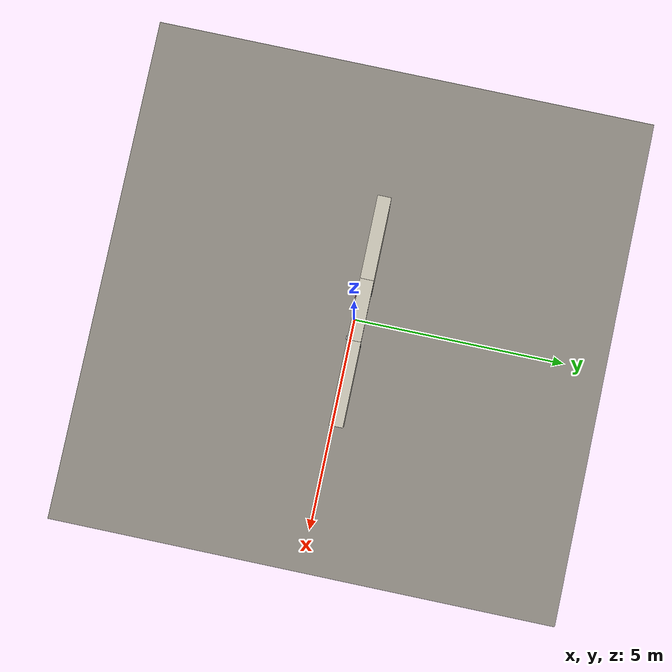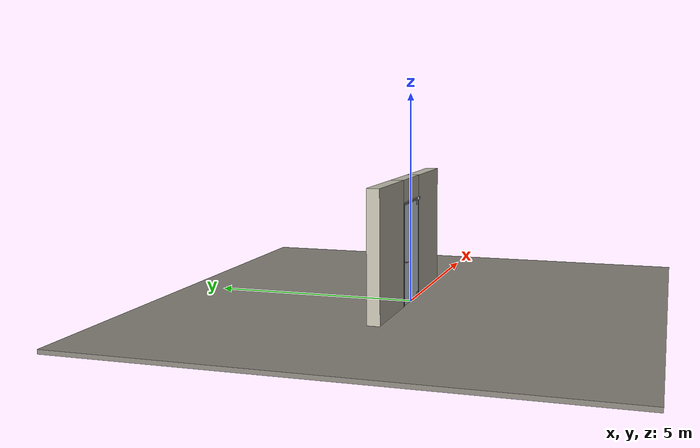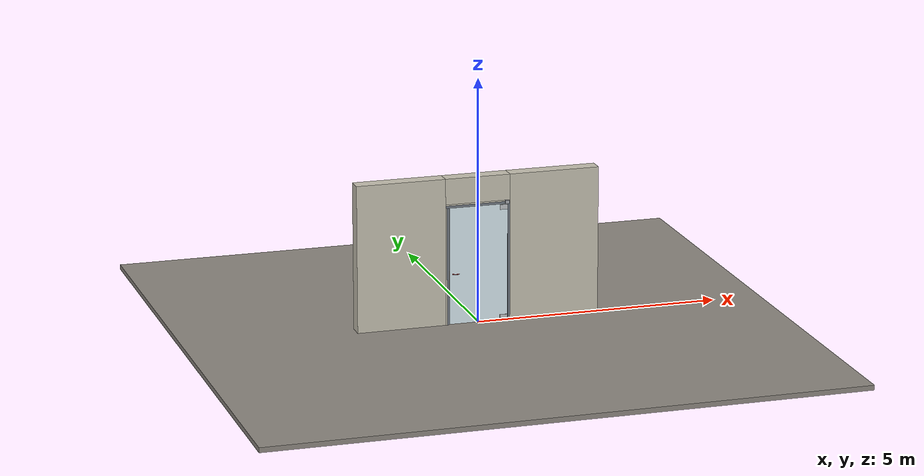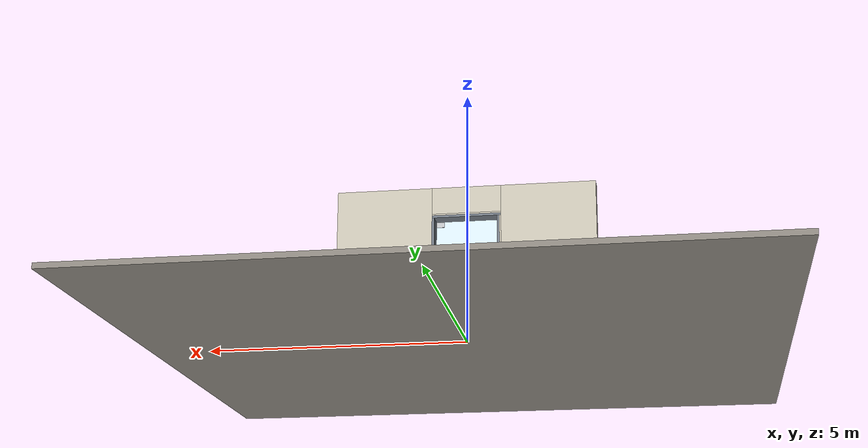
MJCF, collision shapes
<?xml version="1.0" ?>
<mujoco model="db0044_pivot_simple">
  <compiler angle="radian" meshdir="../../hardware" texturedir="../../textures" autolimits="true" inertiafromgeom="false"/>
  <option timestep="0.002" integrator="implicitfast" cone="elliptic" impratio="10" noslip_iterations="3">
    <flag multiccd="enable"/>
  </option>
  <size memory="16M"/>
  <default>
    <geom condim="4" solref="0.005 1" solimp="0.95 0.99 0.001"/>
    <joint solreflimit="0.005 1" solimplimit="0.95 0.99 0.001"/>
    <tendon solreflimit="0.005 1"/>
    <equality solref="0.002 1"/>
  </default>
  <visual>
    <headlight ambient="0.4 0.4 0.4" diffuse="0.7 0.7 0.7" specular="0.2 0.2 0.2"/>
    <quality shadowsize="4096"/>
    <map znear="0.01" zfar="60"/>
  </visual>
  <asset>
    <mesh name="lever_57205841c3" file="lever_57205841c3.obj"/>
    <material name="mat_floor" rgba="0.55 0.53 0.5 1" specular="0.2" shininess="0.15" reflectance="0"/>
    <material name="mat_wall" rgba="0.78 0.76 0.7 1" specular="0.2" shininess="0.1" reflectance="0"/>
    <material name="mat_leaf" rgba="0.85 0.92 0.95 0.25" specular="0.2" shininess="0.95" reflectance="0.1"/>
    <material name="mat_glass_leaf" rgba="0.85 0.92 0.95 0.25" specular="0.2" shininess="0.95" reflectance="0.1"/>
    <material name="mat_patch" rgba="0.75 0.76 0.77 1" specular="0.8" shininess="0.65" reflectance="0.4"/>
    <material name="mat_hinge" rgba="0.65 0.66 0.68 1" specular="0.74" shininess="0.5" reflectance="0.36"/>
    <material name="mat_op_black_matte_metal" rgba="0.05 0.05 0.05 1" specular="0.38" shininess="0.3" reflectance="0.12"/>
    <material name="mat_trim" rgba="0.85 0.66 0.3 1" specular="0.8" shininess="0.75" reflectance="0.4"/>
    <material name="mat_frame" rgba="0.45 0.48 0.52 1" specular="0.32" shininess="0.6" reflectance="0.08"/>
    <texture name="skybox" type="skybox" builtin="gradient" rgb1="0.6 0.7 0.85" rgb2="0.9 0.92 0.95" width="256" height="256"/>
  </asset>
  <worldbody>
    <light name="sun" pos="1.5 -2.5 4" dir="-0.3 0.5 -0.8" directional="true" diffuse="0.8 0.8 0.8" specular="0.3 0.3 0.3" castshadow="true"/>
    <light name="fill" pos="-1.5 2.5 3" dir="0.3 -0.5 -0.7" directional="true" diffuse="0.35 0.35 0.4" castshadow="false"/>
    <camera name="robot_view" pos="0 -2.75275 2.01415" xyaxes="1 0 0 0 0.26963 0.962964" fovy="52"/>
    <camera name="far_view" pos="0 3.01975 2.01415" xyaxes="-1 0 0 0 -0.26963 0.962964" fovy="52"/>
    <camera name="iso" pos="-2.19355 -2.29095 2.47595" xyaxes="0.741536 -0.670913 0 0.242917 0.268487 0.932151" fovy="46"/>
    <camera name="detail_handle" pos="-0.256 -0.8645 1.33" xyaxes="0.97561 0.219512 0 -0.070934 0.315262 0.94635" fovy="38"/>
    <geom name="floor" type="box" size="6 6 0.05" pos="0 0 -0.05" material="mat_floor" group="0" contype="1" conaffinity="1" friction="0.8 0.005 0.0001" density="2400"/>
    <geom name="wall_left" type="box" size="0.9095 0.15 1.506" pos="-1.5905 0.1335 1.506" material="mat_wall" group="0" contype="1" conaffinity="1" friction="0.6 0.005 0.0001" density="800"/>
    <geom name="wall_right" type="box" size="0.9245 0.15 1.506" pos="1.5755 0.1335 1.506" material="mat_wall" group="0" contype="1" conaffinity="1" friction="0.6 0.005 0.0001" density="800"/>
    <geom name="wall_header" type="box" size="0.666 0.15 0.2625" pos="-0.015 0.1335 2.7495" material="mat_wall" group="0" contype="1" conaffinity="1" friction="0.6 0.005 0.0001" density="800"/>
    <geom name="pivot_bottom_socket" type="box" size="0.035 0.035 0.008" pos="0.587 -0.0195 -0.002" material="mat_hinge" group="1" contype="0" conaffinity="0" density="7850"/>
    <geom name="pivot_top_bracket" type="box" size="0.035 0.035 0.0355" pos="0.587 -0.0195 2.4515" material="mat_hinge" group="1" contype="0" conaffinity="0" density="7850"/>
    <geom name="jamb_hinge" type="box" size="0.0225 0.15 1.206" pos="0.6285 0.1335 1.206" material="mat_frame" group="0" contype="1" conaffinity="1" friction="0.6 0.005 0.0001" density="300"/>
    <geom name="jamb_strike" type="box" size="0.0225 0.15 1.206" pos="-0.6285 0.1335 1.206" material="mat_frame" group="0" contype="1" conaffinity="1" friction="0.6 0.005 0.0001" density="300"/>
    <geom name="stud_strike" type="box" size="0.015 0.15 1.206" pos="-0.666 0.1335 1.206" material="mat_wall" group="0" contype="1" conaffinity="1" friction="0.6 0.005 0.0001" density="500"/>
    <geom name="jamb_head" type="box" size="0.666 0.15 0.0225" pos="-0.015 0.1335 2.4345" material="mat_frame" group="0" contype="1" conaffinity="1" friction="0.6 0.005 0.0001" density="300"/>
    <geom name="head_stud" type="box" size="0.666 0.15 0.015" pos="-0.015 0.1335 2.472" material="mat_wall" group="0" contype="1" conaffinity="1" friction="0.6 0.005 0.0001" density="500"/>
    <site name="approach_point" pos="0 -1.5 0" quat="1 0 0 0" size="0.05" rgba="0.2 0.9 0.2 0.5" group="4"/>
    <site name="goal_point" pos="0 1.5 0" quat="1 0 0 0" size="0.05" rgba="0.2 0.9 0.2 0.5" group="4"/>
    <site name="door_plane_center" pos="0 0 1.206" quat="1 0 0 0" size="0.02" rgba="0.2 0.9 0.2 0.5" group="4"/>
    <body name="leaf" pos="0.606 0 0">
      <inertial pos="-0.602915 0 1.208" mass="138.315751" quat="-0.5 0.5 0.5 0.5" diaginertia="16.605505839 66.414301614 83.011482194"/>
      <joint name="leaf_hinge" type="hinge" axis="0 0 1" pos="-0.019 -0.0195 0" limited="true" range="0 1.745329" damping="0.948781" frictionloss="1.358858" armature="0.02"/>
      <geom name="leaf_glass" type="box" size="0.6 0.0095 1.2" pos="-0.603 0 1.208" material="mat_glass_leaf" group="0" contype="1" conaffinity="1" friction="0.4 0.005 0.0001" density="1"/>
      <geom name="leaf_patch_bot" type="box" size="0.08 0.0175 0.05" pos="-0.083 0 0.068" material="mat_patch" group="1" contype="0" conaffinity="0" density="1"/>
      <geom name="leaf_patch_top" type="box" size="0.08 0.0175 0.05" pos="-0.083 0 2.348" material="mat_patch" group="1" contype="0" conaffinity="0" density="1"/>
      <site name="leaf_edge_mid" pos="-1.203 0 1.2" quat="1 0 0 0" size="0.02" rgba="0.2 0.9 0.2 0.5" group="4"/>
      <body name="leaf_handle" pos="-1.138 0 1.05">
        <inertial pos="0.019728 0 0" mass="0.753175" quat="0 0.707107 0.707107 0" diaginertia="0.000986163 0.001678314 0.002560828"/>
        <joint name="leaf_handle_hinge" type="hinge" axis="0 1 0" limited="true" range="0 0.87" damping="0.212413" frictionloss="0.042" stiffness="1" springref="-0.35" armature="0.01"/>
        <geom name="leaf_handle_lever_n" type="mesh" mesh="lever_57205841c3" pos="0 -0.0095 0" quat="0 0 -0.707107 0.707107" material="mat_op_black_matte_metal" group="1" contype="0" conaffinity="0" density="3000"/>
        <geom name="leaf_handle_lever_col_n" type="capsule" size="0.007 0.053" pos="0.06 -0.0645 0" quat="0.707107 0 0.707107 0" material="mat_op_black_matte_metal" group="3" contype="1" conaffinity="1" rgba="0.8 0.3 0.3 0.25" friction="0.7 0.01 0.0001" density="3000"/>
        <geom name="leaf_handle_hub_col_n" type="cylinder" size="0.012 0.022" pos="0 -0.0395 0" quat="0.707107 -0.707107 0 0" material="mat_op_black_matte_metal" group="3" contype="1" conaffinity="1" rgba="0.8 0.3 0.3 0.25" friction="0.6 0.005 0.0001" density="3000"/>
        <geom name="leaf_handle_lever_p" type="mesh" mesh="lever_57205841c3" pos="0 0.0095 0" quat="0 0 0.707107 0.707107" material="mat_op_black_matte_metal" group="1" contype="0" conaffinity="0" density="3000"/>
        <geom name="leaf_handle_lever_col_p" type="capsule" size="0.007 0.053" pos="0.06 0.0645 0" quat="0.707107 0 0.707107 0" material="mat_op_black_matte_metal" group="3" contype="1" conaffinity="1" rgba="0.8 0.3 0.3 0.25" friction="0.7 0.01 0.0001" density="3000"/>
        <geom name="leaf_handle_hub_col_p" type="cylinder" size="0.012 0.022" pos="0 0.0395 0" quat="0.707107 -0.707107 0 0" material="mat_op_black_matte_metal" group="3" contype="1" conaffinity="1" rgba="0.8 0.3 0.3 0.25" friction="0.6 0.005 0.0001" density="3000"/>
        <site name="leaf_handle_grip_n" pos="0.096 -0.0645 0" quat="1 0 0 0" size="0.012" rgba="0.2 0.9 0.2 0.5" group="4"/>
        <site name="leaf_handle_grip_p" pos="0.096 0.0645 0" quat="1 0 0 0" size="0.012" rgba="0.2 0.9 0.2 0.5" group="4"/>
      </body>
    </body>
  </worldbody>
  <sensor>
    <jointpos name="leaf_hinge_pos" joint="leaf_hinge"/>
    <jointvel name="leaf_hinge_vel" joint="leaf_hinge"/>
    <jointpos name="leaf_handle_hinge_pos" joint="leaf_handle_hinge"/>
    <jointvel name="leaf_handle_hinge_vel" joint="leaf_handle_hinge"/>
  </sensor>
</mujoco>
